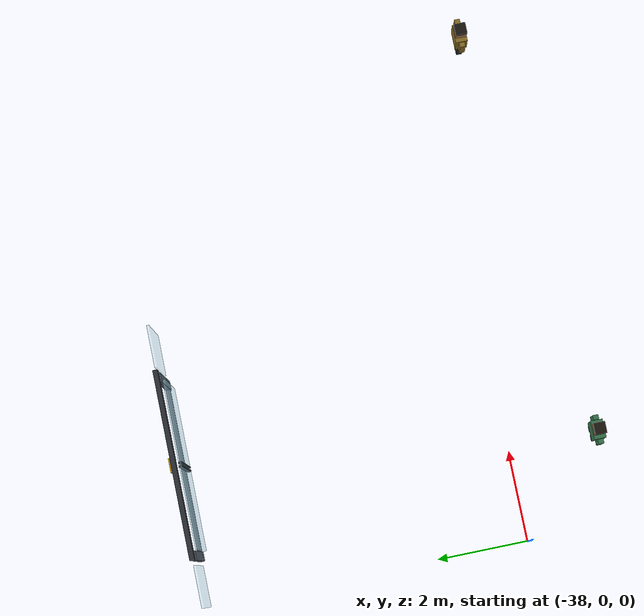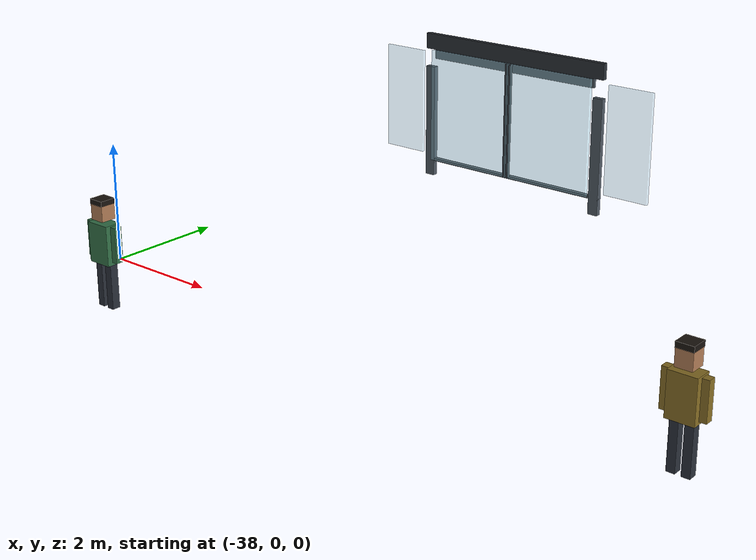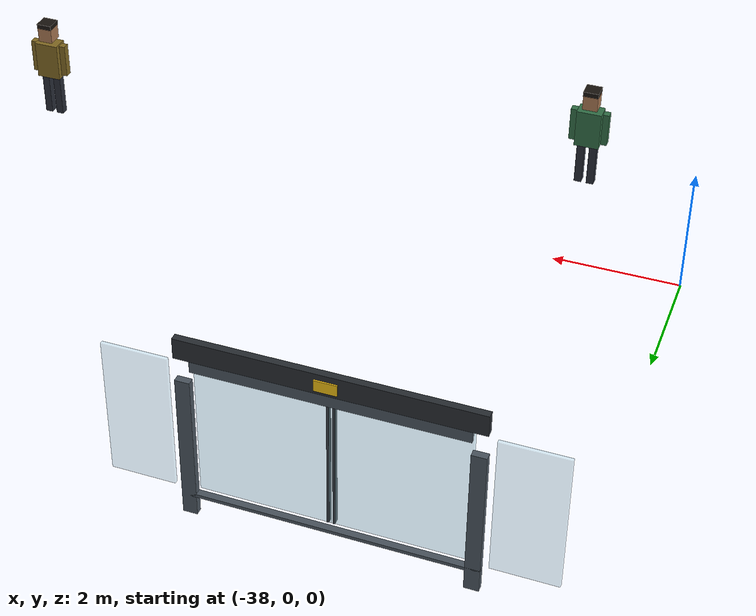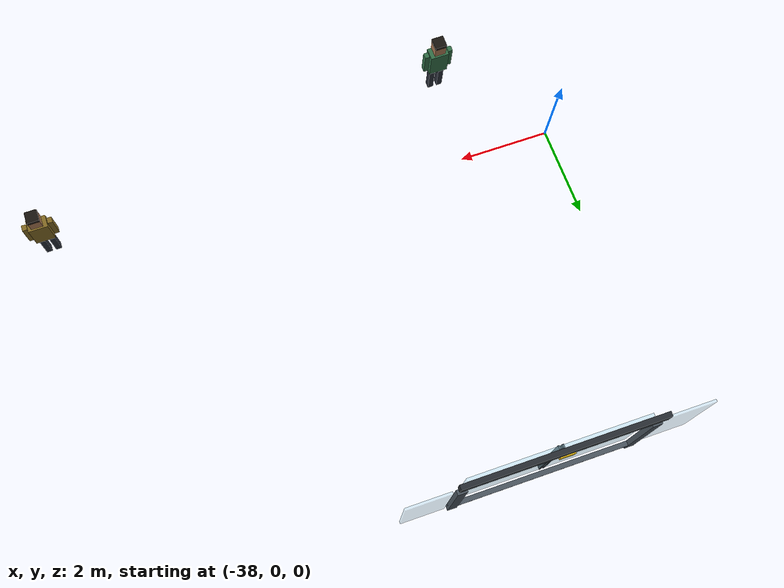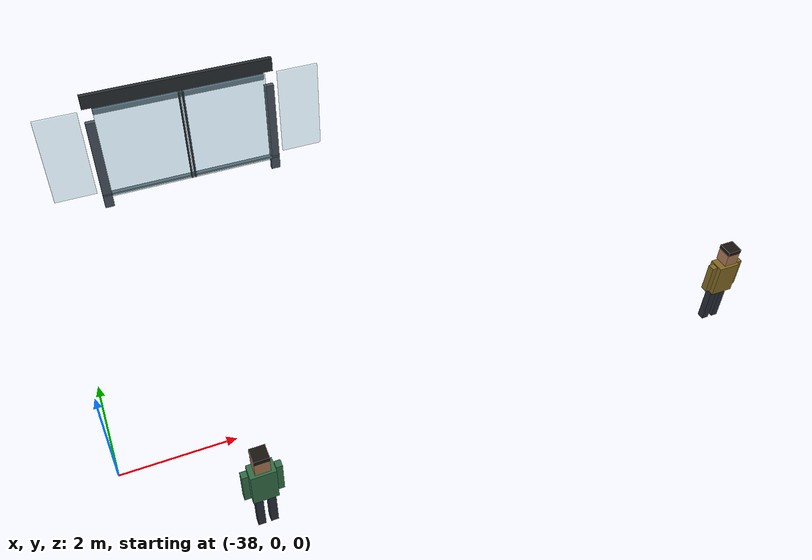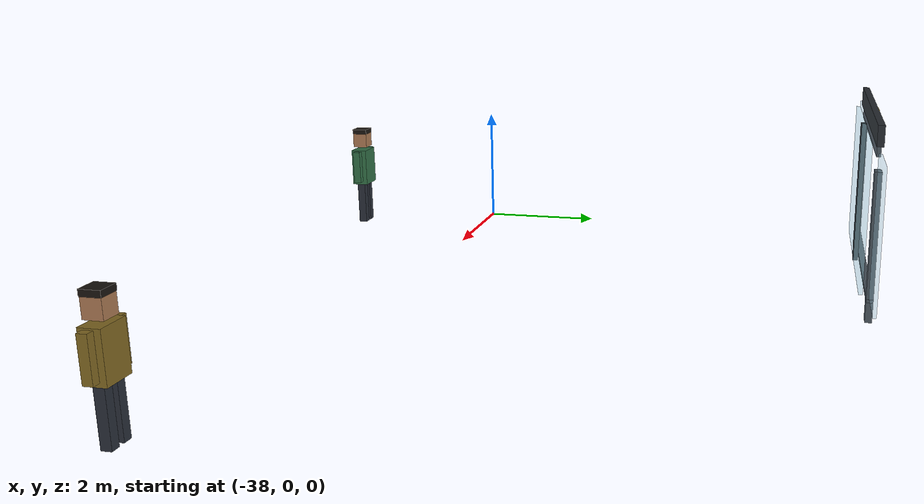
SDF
<sdf version="1.8">
 <world name="metro_station">
  <model name="psd_unit_03">
   <static>true</static>
   <pose>-35.0 0 0 0 0 0</pose>
   <link name="psd_frame_03">
    <collision name="psd_post_left_col_03">
     <pose>-1.90 7.02 1.10 0 0 0</pose>
     <geometry><box><size>0.20 0.10 2.20</size></box></geometry>
    </collision>
    <collision name="psd_post_right_col_03">
     <pose>1.90 7.02 1.10 0 0 0</pose>
     <geometry><box><size>0.20 0.10 2.20</size></box></geometry>
    </collision>
    <collision name="psd_header_col_03">
     <pose>0 7.02 2.70 0 0 0</pose>
     <geometry><box><size>4.00 0.10 0.30</size></box></geometry>
    </collision>
    <collision name="psd_threshold_col_03">
     <pose>0 7.02 0.325 0 0 0</pose>
     <geometry><box><size>4.00 0.10 0.05</size></box></geometry>
    </collision>
    <visual name="psd_post_left_vis_03">
     <pose>-1.90 7.02 1.10 0 0 0</pose>
     <geometry><box><size>0.20 0.10 2.20</size></box></geometry>
     <material>
      <ambient>0.22 0.25 0.28 1</ambient>
      <diffuse>0.30 0.34 0.38 1</diffuse>
      <specular>0.35 0.35 0.35 1</specular>
     </material>
    </visual>
    <visual name="psd_post_right_vis_03">
     <pose>1.90 7.02 1.10 0 0 0</pose>
     <geometry><box><size>0.20 0.10 2.20</size></box></geometry>
     <material>
      <ambient>0.22 0.25 0.28 1</ambient>
      <diffuse>0.30 0.34 0.38 1</diffuse>
      <specular>0.35 0.35 0.35 1</specular>
     </material>
    </visual>
    <visual name="psd_header_vis_03">
     <pose>0 7.02 2.70 0 0 0</pose>
     <geometry><box><size>4.00 0.10 0.30</size></box></geometry>
     <material><ambient>0.10 0.12 0.14 1</ambient><diffuse>0.16 0.18 0.20 1</diffuse></material>
    </visual>
    <visual name="psd_threshold_vis_03">
     <pose>0 7.02 0.325 0 0 0</pose>
     <geometry><box><size>4.00 0.10 0.05</size></box></geometry>
     <material>
      <ambient>0.22 0.25 0.28 1</ambient>
      <diffuse>0.30 0.34 0.38 1</diffuse>
      <specular>0.35 0.35 0.35 1</specular>
     </material>
    </visual>
    <visual name="psd_glass_left_vis_03">
     <pose>-2.55 7.02 1.45 0 0 0</pose>
     <transparency>0.65</transparency>
     <geometry><box><size>0.90 0.05 2.05</size></box></geometry>
     <material><ambient>0.55 0.75 0.82 1</ambient><diffuse>0.65 0.85 0.92 1</diffuse></material>
    </visual>
    <visual name="psd_glass_right_vis_03">
     <pose>2.55 7.02 1.45 0 0 0</pose>
     <transparency>0.65</transparency>
     <geometry><box><size>0.90 0.05 2.05</size></box></geometry>
     <material><ambient>0.55 0.75 0.82 1</ambient><diffuse>0.65 0.85 0.92 1</diffuse></material>
    </visual>
    <visual name="psd_unit_label_vis_03">
     <pose>0 7.10 2.70 0 0 0</pose>
     <geometry><box><size>0.30 0.02 0.16</size></box></geometry>
     <material>
      <ambient>0.95 0.72 0.04 1</ambient>
      <diffuse>0.98 0.78 0.08 1</diffuse>
      <emissive>0.35 0.25 0.02 1</emissive>
     </material>
    </visual>
    <visual name="psd_upper_panel_vis_03">
     <pose>0 7.02 2.46 0 0 0</pose>
     <geometry><box><size>3.60 0.06 0.18</size></box></geometry>
     <material>
      <ambient>0.22 0.25 0.28 1</ambient>
      <diffuse>0.30 0.34 0.38 1</diffuse>
      <specular>0.35 0.35 0.35 1</specular>
     </material>
    </visual>
   </link>
  </model>
  <model name="psd_door_03">
   <static>false</static>
   <allow_auto_disable>false</allow_auto_disable>
   <pose>-35.0 0 0 0 0 0</pose>
   <link name="psd_base_03">
    <inertial>
     <mass>1.0</mass>
     <inertia><ixx>0.001</ixx><ixy>0</ixy><ixz>0</ixz><iyy>0.001</iyy><iyz>0</iyz><izz>0.001</izz></inertia>
    </inertial>
   </link>
   <link name="psd_left_03">
    <pose>-0.90 6.90 1.45 0 0 0</pose>
    <inertial>
     <mass>120.0</mass>
     <inertia><ixx>48.436</ixx><ixy>0</ixy><ixz>0</ixz><iyy>80.800</iyy><iyz>0</iyz><izz>32.436</izz></inertia>
    </inertial>
    <collision name="psd_left_col_03"><geometry><box><size>1.80 0.06 2.20</size></box></geometry></collision>
    <visual name="psd_left_vis_03">
     <transparency>0.6</transparency>
     <geometry><box><size>1.80 0.06 2.20</size></box></geometry>
     <material><ambient>0.55 0.78 0.85 1</ambient><diffuse>0.65 0.88 0.95 1</diffuse></material>
    </visual>
    <visual name="psd_left_edge_vis_03">
     <pose>0.86 0 0 0 0 0</pose>
     <geometry><box><size>0.03 0.08 2.20</size></box></geometry>
     <material><ambient>0.15 0.18 0.20 1</ambient><diffuse>0.22 0.25 0.28 1</diffuse></material>
    </visual>
   </link>
   <link name="psd_right_03">
    <pose>0.90 6.90 1.45 0 0 0</pose>
    <inertial>
     <mass>120.0</mass>
     <inertia><ixx>48.436</ixx><ixy>0</ixy><ixz>0</ixz><iyy>80.800</iyy><iyz>0</iyz><izz>32.436</izz></inertia>
    </inertial>
    <collision name="psd_right_col_03"><geometry><box><size>1.80 0.06 2.20</size></box></geometry></collision>
    <visual name="psd_right_vis_03">
     <transparency>0.6</transparency>
     <geometry><box><size>1.80 0.06 2.20</size></box></geometry>
     <material><ambient>0.55 0.78 0.85 1</ambient><diffuse>0.65 0.88 0.95 1</diffuse></material>
    </visual>
    <visual name="psd_right_edge_vis_03">
     <pose>-0.86 0 0 0 0 0</pose>
     <geometry><box><size>0.03 0.08 2.20</size></box></geometry>
     <material><ambient>0.15 0.18 0.20 1</ambient><diffuse>0.22 0.25 0.28 1</diffuse></material>
    </visual>
   </link>
   <joint name="psd_base_fixed_03" type="fixed"><parent>world</parent><child>psd_base_03</child></joint>
   <joint name="psd_left_joint_03" type="prismatic">
    <parent>psd_base_03</parent>
    <child>psd_left_03</child>
    <axis>
     <xyz>1 0 0</xyz>
     <limit><lower>-1.80</lower><upper>0.0</upper><effort>5000.0</effort><velocity>1.0</velocity></limit>
     <dynamics><damping>2.0</damping><friction>0.2</friction></dynamics>
    </axis>
   </joint>
   <joint name="psd_right_joint_03" type="prismatic">
    <parent>psd_base_03</parent>
    <child>psd_right_03</child>
    <axis>
     <xyz>1 0 0</xyz>
     <limit><lower>0.0</lower><upper>1.80</upper><effort>5000.0</effort><velocity>1.0</velocity></limit>
     <dynamics><damping>2.0</damping><friction>0.2</friction></dynamics>
    </axis>
   </joint>
  </model>
  <model name="passenger_03">
   <static>true</static>
   <allow_auto_disable>false</allow_auto_disable>
   <pose>-36.0 -1.85 0.30 0 0 0</pose>
   <link name="passenger_body_03">
    <visual name="leg_left_03">
     <pose>-0.10 0 0.36 0 0 0</pose>
     <geometry><box><size>0.12 0.13 0.72</size></box></geometry>
     <material><ambient>0.10 0.12 0.16 1</ambient><diffuse>0.16 0.18 0.22 1</diffuse></material>
    </visual>
    <visual name="leg_right_03">
     <pose>0.10 0 0.36 0 0 0</pose>
     <geometry><box><size>0.12 0.13 0.72</size></box></geometry>
     <material><ambient>0.10 0.12 0.16 1</ambient><diffuse>0.16 0.18 0.22 1</diffuse></material>
    </visual>
    <visual name="torso_03">
     <pose>0 0 1.02 0 0 0</pose>
     <geometry><box><size>0.40 0.26 0.62</size></box></geometry>
     <material><ambient>0.16 0.34 0.22 1</ambient><diffuse>0.20 0.44 0.28 1</diffuse></material>
    </visual>
    <visual name="head_03">
     <pose>0 0 1.52 0 0 0</pose>
     <geometry><box><size>0.24 0.24 0.28</size></box></geometry>
     <material><ambient>0.55 0.38 0.26 1</ambient><diffuse>0.68 0.48 0.33 1</diffuse></material>
    </visual>
    <visual name="hair_03">
     <pose>0 0 1.66 0 0 0</pose>
     <geometry><box><size>0.25 0.25 0.08</size></box></geometry>
     <material><ambient>0.06 0.05 0.04 1</ambient><diffuse>0.10 0.08 0.06 1</diffuse></material>
    </visual>
    <visual name="arm_left_03">
     <pose>-0.26 0 1.04 0 0 0</pose>
     <geometry><box><size>0.10 0.12 0.55</size></box></geometry>
     <material><ambient>0.16 0.34 0.22 1</ambient><diffuse>0.20 0.44 0.28 1</diffuse></material>
    </visual>
    <visual name="arm_right_03">
     <pose>0.26 0 1.04 0 0 0</pose>
     <geometry><box><size>0.10 0.12 0.55</size></box></geometry>
     <material><ambient>0.16 0.34 0.22 1</ambient><diffuse>0.20 0.44 0.28 1</diffuse></material>
    </visual>
   </link>
  </model>
  <model name="passenger_04">
   <static>true</static>
   <allow_auto_disable>false</allow_auto_disable>
   <pose>-27.0 -0.75 0.30 0 0 0</pose>
   <link name="passenger_body_04">
    <visual name="leg_left_04">
     <pose>-0.10 0 0.36 0 0 0</pose>
     <geometry><box><size>0.12 0.13 0.72</size></box></geometry>
     <material><ambient>0.10 0.12 0.16 1</ambient><diffuse>0.16 0.18 0.22 1</diffuse></material>
    </visual>
    <visual name="leg_right_04">
     <pose>0.10 0 0.36 0 0 0</pose>
     <geometry><box><size>0.12 0.13 0.72</size></box></geometry>
     <material><ambient>0.10 0.12 0.16 1</ambient><diffuse>0.16 0.18 0.22 1</diffuse></material>
    </visual>
    <visual name="torso_04">
     <pose>0 0 1.02 0 0 0</pose>
     <geometry><box><size>0.40 0.26 0.62</size></box></geometry>
     <material><ambient>0.40 0.32 0.10 1</ambient><diffuse>0.52 0.42 0.14 1</diffuse></material>
    </visual>
    <visual name="head_04">
     <pose>0 0 1.52 0 0 0</pose>
     <geometry><box><size>0.24 0.24 0.28</size></box></geometry>
     <material><ambient>0.55 0.38 0.26 1</ambient><diffuse>0.68 0.48 0.33 1</diffuse></material>
    </visual>
    <visual name="hair_04">
     <pose>0 0 1.66 0 0 0</pose>
     <geometry><box><size>0.25 0.25 0.08</size></box></geometry>
     <material><ambient>0.06 0.05 0.04 1</ambient><diffuse>0.10 0.08 0.06 1</diffuse></material>
    </visual>
    <visual name="arm_left_04">
     <pose>-0.26 0 1.04 0 0 0</pose>
     <geometry><box><size>0.10 0.12 0.55</size></box></geometry>
     <material><ambient>0.40 0.32 0.10 1</ambient><diffuse>0.52 0.42 0.14 1</diffuse></material>
    </visual>
    <visual name="arm_right_04">
     <pose>0.26 0 1.04 0 0 0</pose>
     <geometry><box><size>0.10 0.12 0.55</size></box></geometry>
     <material><ambient>0.40 0.32 0.10 1</ambient><diffuse>0.52 0.42 0.14 1</diffuse></material>
    </visual>
   </link>
  </model>
 </world>
</sdf>
